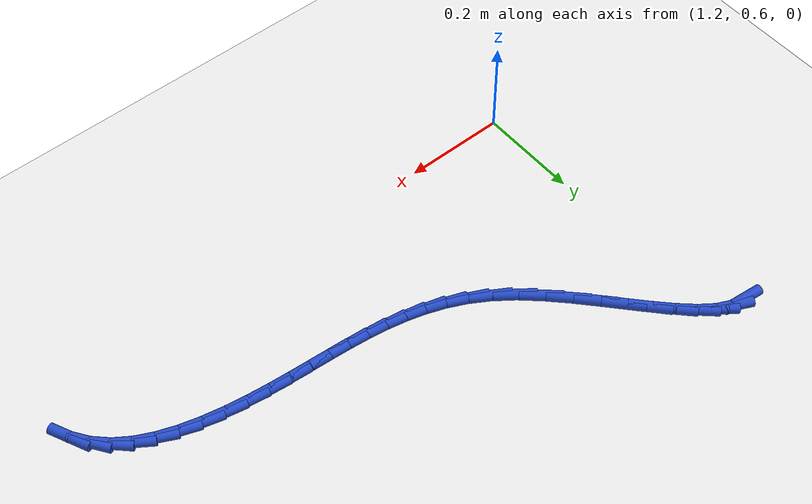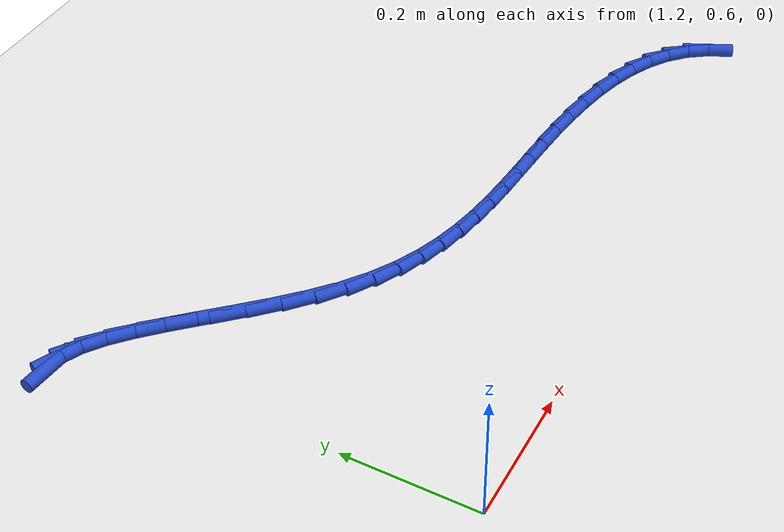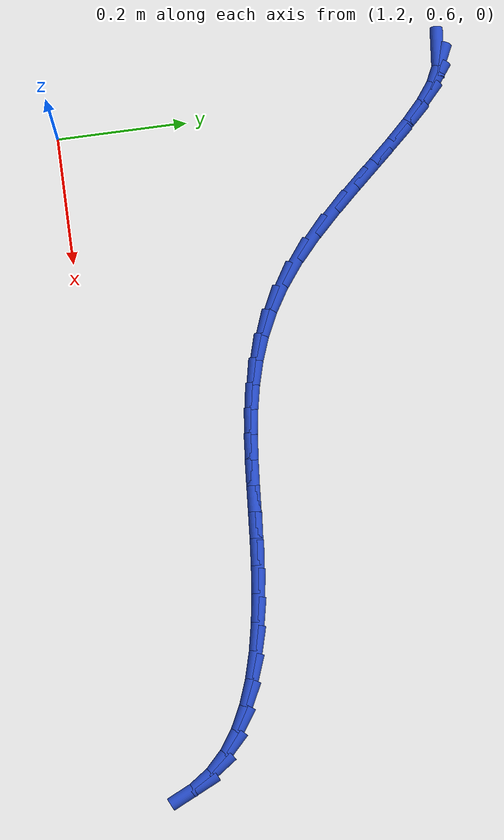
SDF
<sdf version="1.6">
 <world name="default">
  <model name="ground_plane">
   <static>1</static>
   <link name="link">
    <collision name="collision">
     <geometry><plane><normal>0 0 1</normal><size>100 100</size></plane></geometry>
     <surface><friction><ode><mu>100</mu><mu2>50</mu2></ode></friction></surface>
    </collision>
    <visual name="visual">
     <cast_shadows>0</cast_shadows>
     <geometry><plane><normal>0 0 1</normal><size>100 100</size></plane></geometry>
     <material>
      <script><uri>file://media/materials/scripts/gazebo.material</uri><name>Gazebo/WhiteGlow</name></script>
     </material>
    </visual>
   </link>
  </model>
  <model name="line">
   <link name="link_48">
    <pose>1.1426994661061665 1.2002022592850703 0.01 0 1.57 -0.10505992513715576</pose>
    <collision name="collision">
     <geometry><cylinder><radius>0.01</radius><length>0.08</length></cylinder></geometry>
    </collision>
    <visual name="visual">
     <material>
      <script><name>Gazebo/Blue</name><uri>file://media/materials/scripts/gazebo.material</uri></script>
     </material>
     <geometry><cylinder><radius>0.01</radius><length>0.08</length></cylinder></geometry>
    </visual>
   </link>
   <link name="link_49">
    <pose>1.1663480478872639 1.1977085594850374 0.01 0 1.57 -0.44274785096787167</pose>
    <collision name="collision">
     <geometry><cylinder><radius>0.01</radius><length>0.08</length></cylinder></geometry>
    </collision>
    <visual name="visual">
     <material>
      <script><name>Gazebo/Blue</name><uri>file://media/materials/scripts/gazebo.material</uri></script>
     </material>
     <geometry><cylinder><radius>0.01</radius><length>0.08</length></cylinder></geometry>
    </visual>
   </link>
   <link name="link_50">
    <pose>1.1919386905236564 1.1855749673264873 0.01 0 1.57 -0.6350031741727635</pose>
    <collision name="collision">
     <geometry><cylinder><radius>0.01</radius><length>0.08</length></cylinder></geometry>
    </collision>
    <visual name="visual">
     <material>
      <script><name>Gazebo/Blue</name><uri>file://media/materials/scripts/gazebo.material</uri></script>
     </material>
     <geometry><cylinder><radius>0.01</radius><length>0.08</length></cylinder></geometry>
    </visual>
   </link>
   <link name="link_51">
    <pose>1.2192917210618186 1.1654210970793921 0.01 0 1.57 -0.7425122486347941</pose>
    <collision name="collision">
     <geometry><cylinder><radius>0.01</radius><length>0.08</length></cylinder></geometry>
    </collision>
    <visual name="visual">
     <material>
      <script><name>Gazebo/Blue</name><uri>file://media/materials/scripts/gazebo.material</uri></script>
     </material>
     <geometry><cylinder><radius>0.01</radius><length>0.08</length></cylinder></geometry>
    </visual>
   </link>
   <link name="link_52">
    <pose>1.2482274665482247 1.1388665630137256 0.01 0 1.57 -0.8015589986895567</pose>
    <collision name="collision">
     <geometry><cylinder><radius>0.01</radius><length>0.08</length></cylinder></geometry>
    </collision>
    <visual name="visual">
     <material>
      <script><name>Gazebo/Blue</name><uri>file://media/materials/scripts/gazebo.material</uri></script>
     </material>
     <geometry><cylinder><radius>0.01</radius><length>0.08</length></cylinder></geometry>
    </visual>
   </link>
   <link name="link_53">
    <pose>1.2785662540293492 1.1075309793994614 0.01 0 1.57 -0.8297967448984692</pose>
    <collision name="collision">
     <geometry><cylinder><radius>0.01</radius><length>0.08</length></cylinder></geometry>
    </collision>
    <visual name="visual">
     <material>
      <script><name>Gazebo/Blue</name><uri>file://media/materials/scripts/gazebo.material</uri></script>
     </material>
     <geometry><cylinder><radius>0.01</radius><length>0.08</length></cylinder></geometry>
    </visual>
   </link>
   <link name="link_54">
    <pose>1.3101284105516677 1.0730339605065715 0.01 0 1.57 -0.8353674964339666</pose>
    <collision name="collision">
     <geometry><cylinder><radius>0.01</radius><length>0.08</length></cylinder></geometry>
    </collision>
    <visual name="visual">
     <material>
      <script><name>Gazebo/Blue</name><uri>file://media/materials/scripts/gazebo.material</uri></script>
     </material>
     <geometry><cylinder><radius>0.01</radius><length>0.08</length></cylinder></geometry>
    </visual>
   </link>
   <link name="link_55">
    <pose>1.3427342631616543 1.0369951206050294 0.01 0 1.57 -0.8212626258218181</pose>
    <collision name="collision">
     <geometry><cylinder><radius>0.01</radius><length>0.08</length></cylinder></geometry>
    </collision>
    <visual name="visual">
     <material>
      <script><name>Gazebo/Blue</name><uri>file://media/materials/scripts/gazebo.material</uri></script>
     </material>
     <geometry><cylinder><radius>0.01</radius><length>0.08</length></cylinder></geometry>
    </visual>
   </link>
   <link name="link_56">
    <pose>1.3762041389057833 1.001034073964809 0.01 0 1.57 -0.7869973523059962</pose>
    <collision name="collision">
     <geometry><cylinder><radius>0.01</radius><length>0.08</length></cylinder></geometry>
    </collision>
    <visual name="visual">
     <material>
      <script><name>Gazebo/Blue</name><uri>file://media/materials/scripts/gazebo.material</uri></script>
     </material>
     <geometry><cylinder><radius>0.01</radius><length>0.08</length></cylinder></geometry>
    </visual>
   </link>
   <link name="link_57">
    <pose>1.4103583648305305 0.9667704348558821 0.01 0 1.57 -0.728873478555405</pose>
    <collision name="collision">
     <geometry><cylinder><radius>0.01</radius><length>0.08</length></cylinder></geometry>
    </collision>
    <visual name="visual">
     <material>
      <script><name>Gazebo/Blue</name><uri>file://media/materials/scripts/gazebo.material</uri></script>
     </material>
     <geometry><cylinder><radius>0.01</radius><length>0.08</length></cylinder></geometry>
    </visual>
   </link>
   <link name="link_58">
    <pose>1.4450172679823694 0.9358238175482223 0.01 0 1.57 -0.6425276906787861</pose>
    <collision name="collision">
     <geometry><cylinder><radius>0.01</radius><length>0.08</length></cylinder></geometry>
    </collision>
    <visual name="visual">
     <material>
      <script><name>Gazebo/Blue</name><uri>file://media/materials/scripts/gazebo.material</uri></script>
     </material>
     <geometry><cylinder><radius>0.01</radius><length>0.08</length></cylinder></geometry>
    </visual>
   </link>
   <link name="link_59">
    <pose>1.4800213082218185 0.9096239884934376 0.01 0 1.57 -0.5444921097442679</pose>
    <collision name="collision">
     <geometry><cylinder><radius>0.01</radius><length>0.08</length></cylinder></geometry>
    </collision>
    <visual name="visual">
     <material>
      <script><name>Gazebo/Blue</name><uri>file://media/materials/scripts/gazebo.material</uri></script>
     </material>
     <geometry><cylinder><radius>0.01</radius><length>0.08</length></cylinder></geometry>
    </visual>
   </link>
   <link name="link_60">
    <pose>1.5153566685774595 0.888226578094227 0.01 0 1.57 -0.4475187058245623</pose>
    <collision name="collision">
     <geometry><cylinder><radius>0.01</radius><length>0.08</length></cylinder></geometry>
    </collision>
    <visual name="visual">
     <material>
      <script><name>Gazebo/Blue</name><uri>file://media/materials/scripts/gazebo.material</uri></script>
     </material>
     <geometry><cylinder><radius>0.01</radius><length>0.08</length></cylinder></geometry>
    </visual>
   </link>
   <link name="link_61">
    <pose>1.551073663035115 0.8710824765368503 0.01 0 1.57 -0.35601677669430337</pose>
    <collision name="collision">
     <geometry><cylinder><radius>0.01</radius><length>0.08</length></cylinder></geometry>
    </collision>
    <visual name="visual">
     <material>
      <script><name>Gazebo/Blue</name><uri>file://media/materials/scripts/gazebo.material</uri></script>
     </material>
     <geometry><cylinder><radius>0.01</radius><length>0.08</length></cylinder></geometry>
    </visual>
   </link>
   <link name="link_62">
    <pose>1.5872228835889723 0.8576399524524537 0.01 0 1.57 -0.2739123615513652</pose>
    <collision name="collision">
     <geometry><cylinder><radius>0.01</radius><length>0.08</length></cylinder></geometry>
    </collision>
    <visual name="visual">
     <material>
      <script><name>Gazebo/Blue</name><uri>file://media/materials/scripts/gazebo.material</uri></script>
     </material>
     <geometry><cylinder><radius>0.01</radius><length>0.08</length></cylinder></geometry>
    </visual>
   </link>
   <link name="link_63">
    <pose>1.6238549222332193 0.847347274472184 0.01 0 1.57 -0.20415111690446883</pose>
    <collision name="collision">
     <geometry><cylinder><radius>0.01</radius><length>0.08</length></cylinder></geometry>
    </collision>
    <visual name="visual">
     <material>
      <script><name>Gazebo/Blue</name><uri>file://media/materials/scripts/gazebo.material</uri></script>
     </material>
     <geometry><cylinder><radius>0.01</radius><length>0.08</length></cylinder></geometry>
    </visual>
   </link>
   <link name="link_64">
    <pose>1.6610203709620435 0.8396527112271878 0.01 0 1.57 -0.14852106244290922</pose>
    <collision name="collision">
     <geometry><cylinder><radius>0.01</radius><length>0.08</length></cylinder></geometry>
    </collision>
    <visual name="visual">
     <material>
      <script><name>Gazebo/Blue</name><uri>file://media/materials/scripts/gazebo.material</uri></script>
     </material>
     <geometry><cylinder><radius>0.01</radius><length>0.08</length></cylinder></geometry>
    </visual>
   </link>
   <link name="link_65">
    <pose>1.6987698217696332 0.8340045313486112 0.01 0 1.57 -0.10779033692860607</pose>
    <collision name="collision">
     <geometry><cylinder><radius>0.01</radius><length>0.08</length></cylinder></geometry>
    </collision>
    <visual name="visual">
     <material>
      <script><name>Gazebo/Blue</name><uri>file://media/materials/scripts/gazebo.material</uri></script>
     </material>
     <geometry><cylinder><radius>0.01</radius><length>0.08</length></cylinder></geometry>
    </visual>
   </link>
   <link name="link_66">
    <pose>1.7371538666501753 0.8298510034676012 0.01 0 1.57 -0.08199314677017787</pose>
    <collision name="collision">
     <geometry><cylinder><radius>0.01</radius><length>0.08</length></cylinder></geometry>
    </collision>
    <visual name="visual">
     <material>
      <script><name>Gazebo/Blue</name><uri>file://media/materials/scripts/gazebo.material</uri></script>
     </material>
     <geometry><cylinder><radius>0.01</radius><length>0.08</length></cylinder></geometry>
    </visual>
   </link>
   <link name="link_67">
    <pose>1.776223097597858 0.8266403962153039 0.01 0 1.57 -0.07071263654918822</pose>
    <collision name="collision">
     <geometry><cylinder><radius>0.01</radius><length>0.08</length></cylinder></geometry>
    </collision>
    <visual name="visual">
     <material>
      <script><name>Gazebo/Blue</name><uri>file://media/materials/scripts/gazebo.material</uri></script>
     </material>
     <geometry><cylinder><radius>0.01</radius><length>0.08</length></cylinder></geometry>
    </visual>
   </link>
   <link name="link_68">
    <pose>1.8160281066068684 0.823820978222866 0.01 0 1.57 -0.07328215640855079</pose>
    <collision name="collision">
     <geometry><cylinder><radius>0.01</radius><length>0.08</length></cylinder></geometry>
    </collision>
    <visual name="visual">
     <material>
      <script><name>Gazebo/Blue</name><uri>file://media/materials/scripts/gazebo.material</uri></script>
     </material>
     <geometry><cylinder><radius>0.01</radius><length>0.08</length></cylinder></geometry>
    </visual>
   </link>
   <link name="link_69">
    <pose>1.856619485671395 0.820841018121434 0.01 0 1.57 -0.08888251873500193</pose>
    <collision name="collision">
     <geometry><cylinder><radius>0.01</radius><length>0.08</length></cylinder></geometry>
    </collision>
    <visual name="visual">
     <material>
      <script><name>Gazebo/Blue</name><uri>file://media/materials/scripts/gazebo.material</uri></script>
     </material>
     <geometry><cylinder><radius>0.01</radius><length>0.08</length></cylinder></geometry>
    </visual>
   </link>
   <link name="link_70">
    <pose>1.898045246692434 0.8171492652758163 0.01 0 1.57 -0.11614829194253552</pose>
    <collision name="collision">
     <geometry><cylinder><radius>0.01</radius><length>0.08</length></cylinder></geometry>
    </collision>
    <visual name="visual">
     <material>
      <script><name>Gazebo/Blue</name><uri>file://media/materials/scripts/gazebo.material</uri></script>
     </material>
     <geometry><cylinder><radius>0.01</radius><length>0.08</length></cylinder></geometry>
    </visual>
   </link>
   <link name="link_71">
    <pose>1.9400869434991028 0.8122441166236353 0.01 0 1.57 -0.15439510878542548</pose>
    <collision name="collision">
     <geometry><cylinder><radius>0.01</radius><length>0.08</length></cylinder></geometry>
    </collision>
    <visual name="visual">
     <material>
      <script><name>Gazebo/Blue</name><uri>file://media/materials/scripts/gazebo.material</uri></script>
     </material>
     <geometry><cylinder><radius>0.01</radius><length>0.08</length></cylinder></geometry>
    </visual>
   </link>
   <link name="link_72">
    <pose>1.9820315660446006 0.8057161182945701 0.01 0 1.57 -0.20520382909856794</pose>
    <collision name="collision">
     <geometry><cylinder><radius>0.01</radius><length>0.08</length></cylinder></geometry>
    </collision>
    <visual name="visual">
     <material>
      <script><name>Gazebo/Blue</name><uri>file://media/materials/scripts/gazebo.material</uri></script>
     </material>
     <geometry><cylinder><radius>0.01</radius><length>0.08</length></cylinder></geometry>
    </visual>
   </link>
   <link name="link_73">
    <pose>2.0231123575565912 0.7971658307310631 0.01 0 1.57 -0.27126748757186087</pose>
    <collision name="collision">
     <geometry><cylinder><radius>0.01</radius><length>0.08</length></cylinder></geometry>
    </collision>
    <visual name="visual">
     <material>
      <script><name>Gazebo/Blue</name><uri>file://media/materials/scripts/gazebo.material</uri></script>
     </material>
     <geometry><cylinder><radius>0.01</radius><length>0.08</length></cylinder></geometry>
    </visual>
   </link>
   <link name="link_74">
    <pose>2.0625625612627396 0.786193814375555 0.01 0 1.57 -0.35636364738459075</pose>
    <collision name="collision">
     <geometry><cylinder><radius>0.01</radius><length>0.08</length></cylinder></geometry>
    </collision>
    <visual name="visual">
     <material>
      <script><name>Gazebo/Blue</name><uri>file://media/materials/scripts/gazebo.material</uri></script>
     </material>
     <geometry><cylinder><radius>0.01</radius><length>0.08</length></cylinder></geometry>
    </visual>
   </link>
   <link name="link_75">
    <pose>2.0996154203907085 0.7724006296704874 0.01 0 1.57 -0.46528489147549945</pose>
    <collision name="collision">
     <geometry><cylinder><radius>0.01</radius><length>0.08</length></cylinder></geometry>
    </collision>
    <visual name="visual">
     <material>
      <script><name>Gazebo/Blue</name><uri>file://media/materials/scripts/gazebo.material</uri></script>
     </material>
     <geometry><cylinder><radius>0.01</radius><length>0.08</length></cylinder></geometry>
    </visual>
   </link>
   <link name="link_76">
    <pose>2.1335041781681605 0.7553868370583016 0.01 0 1.57 -0.6031432799444476</pose>
    <collision name="collision">
     <geometry><cylinder><radius>0.01</radius><length>0.08</length></cylinder></geometry>
    </collision>
    <visual name="visual">
     <material>
      <script><name>Gazebo/Blue</name><uri>file://media/materials/scripts/gazebo.material</uri></script>
     </material>
     <geometry><cylinder><radius>0.01</radius><length>0.08</length></cylinder></geometry>
    </visual>
   </link>
   <link name="link_77">
    <pose>2.1634620778227616 0.7347529969814386 0.01 0 1.57 -0.7732113732108307</pose>
    <collision name="collision">
     <geometry><cylinder><radius>0.01</radius><length>0.08</length></cylinder></geometry>
    </collision>
    <visual name="visual">
     <material>
      <script><name>Gazebo/Blue</name><uri>file://media/materials/scripts/gazebo.material</uri></script>
     </material>
     <geometry><cylinder><radius>0.01</radius><length>0.08</length></cylinder></geometry>
    </visual>
   </link>
   <link name="link_78">
    <pose>2.1887231136617658 0.7101002796948892 0.01 0 1.57 -0.961989158786731</pose>
    <collision name="collision">
     <geometry><cylinder><radius>0.01</radius><length>0.08</length></cylinder></geometry>
    </collision>
    <visual name="visual">
     <material>
      <script><name>Gazebo/Blue</name><uri>file://media/materials/scripts/gazebo.material</uri></script>
     </material>
     <geometry><cylinder><radius>0.01</radius><length>0.08</length></cylinder></geometry>
    </visual>
   </link>
   <link name="link_79">
    <pose>2.208820209029903 0.681272560328535 0.01 0 1.57 -1.133377520381887</pose>
    <collision name="collision">
     <geometry><cylinder><radius>0.01</radius><length>0.08</length></cylinder></geometry>
    </collision>
    <visual name="visual">
     <material>
      <script><name>Gazebo/Blue</name><uri>file://media/materials/scripts/gazebo.material</uri></script>
     </material>
     <geometry><cylinder><radius>0.01</radius><length>0.08</length></cylinder></geometry>
    </visual>
   </link>
  </model>
 </world>
</sdf>
